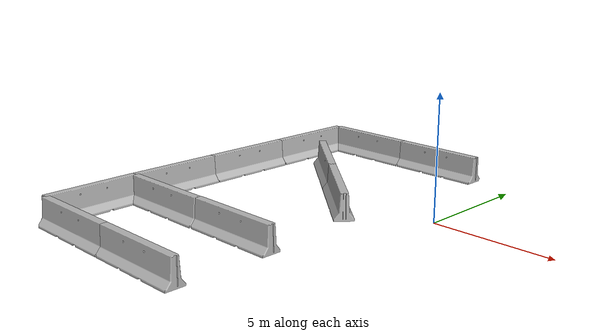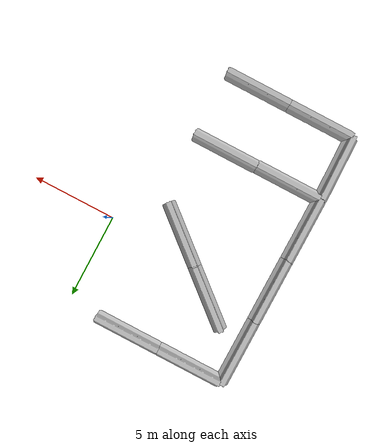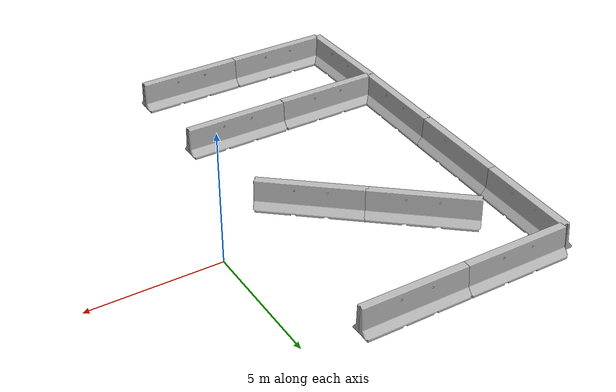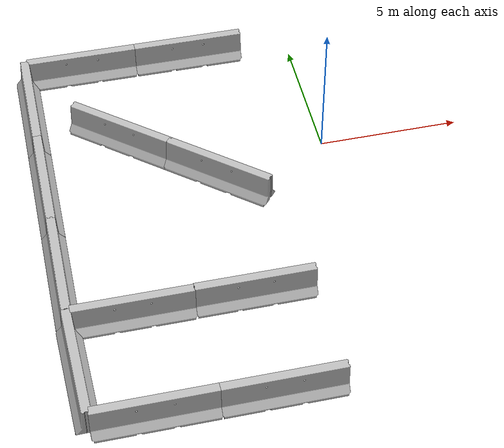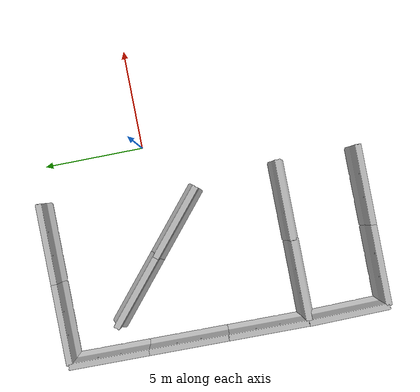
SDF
<sdf version="1.6">
 <world name="default">
  <model name="jersey_barrier">
   <static>1</static>
   <link name="link">
    <visual name="visual">
     <geometry>
      <mesh><uri>model://jersey_barrier/meshes/jersey_barrier.dae</uri><scale>1 1 1</scale></mesh>
     </geometry>
    </visual>
    <collision name="upright">
     <pose>0 0 0.5715 0 -0 0</pose>
     <geometry><box><size>4.06542 0.3063 1.143</size></box></geometry>
    </collision>
    <collision name="base">
     <pose>0 0 0.032258 0 -0 0</pose>
     <geometry><box><size>4.06542 0.8107 0.064516</size></box></geometry>
    </collision>
    <collision name="base2">
     <pose>0 0 0.1 0 -0 0</pose>
     <geometry><box><size>4.06542 0.65 0.1</size></box></geometry>
    </collision>
    <collision name="base3">
     <pose>0 0 0.2 0 -0 0</pose>
     <geometry><box><size>4.06542 0.5 0.1</size></box></geometry>
    </collision>
    <collision name="left-angle">
     <pose>0 -0.224 0.2401 0.9 -0 0</pose>
     <geometry><box><size>4.06542 0.5 0.064516</size></box></geometry>
    </collision>
    <collision name="right-angle">
     <pose>0 0.224 0.2401 -0.9 0 0</pose>
     <geometry><box><size>4.06542 0.5 0.064516</size></box></geometry>
    </collision>
    <velocity_decay><linear>0</linear><angular>0</angular></velocity_decay>
   </link>
   <pose>-4 -1 0 0 0 -0.7</pose>
  </model>
  <model name="jersey_barrier_1_clone_0">
   <static>1</static>
   <link name="link">
    <visual name="visual">
     <geometry>
      <mesh><uri>model://jersey_barrier/meshes/jersey_barrier.dae</uri><scale>1 1 1</scale></mesh>
     </geometry>
    </visual>
    <collision name="upright">
     <pose>0 0 0.5715 0 -0 0</pose>
     <geometry><box><size>4.06542 0.3063 1.143</size></box></geometry>
    </collision>
    <collision name="base">
     <pose>0 0 0.032258 0 -0 0</pose>
     <geometry><box><size>4.06542 0.8107 0.064516</size></box></geometry>
    </collision>
    <collision name="base2">
     <pose>0 0 0.1 0 -0 0</pose>
     <geometry><box><size>4.06542 0.65 0.1</size></box></geometry>
    </collision>
    <collision name="base3">
     <pose>0 0 0.2 0 -0 0</pose>
     <geometry><box><size>4.06542 0.5 0.1</size></box></geometry>
    </collision>
    <collision name="left-angle">
     <pose>0 -0.224 0.2401 0.9 -0 0</pose>
     <geometry><box><size>4.06542 0.5 0.064516</size></box></geometry>
    </collision>
    <collision name="right-angle">
     <pose>0 0.224 0.2401 -0.9 0 0</pose>
     <geometry><box><size>4.06542 0.5 0.064516</size></box></geometry>
    </collision>
   </link>
   <pose>-3.96775 -10.4974 0 0 -0 0</pose>
  </model>
  <model name="jersey_barrier_1_clone_1">
   <static>1</static>
   <link name="link">
    <visual name="visual">
     <geometry>
      <mesh><uri>model://jersey_barrier/meshes/jersey_barrier.dae</uri><scale>1 1 1</scale></mesh>
     </geometry>
    </visual>
    <collision name="upright">
     <pose>0 0 0.5715 0 -0 0</pose>
     <geometry><box><size>4.06542 0.3063 1.143</size></box></geometry>
    </collision>
    <collision name="base">
     <pose>0 0 0.032258 0 -0 0</pose>
     <geometry><box><size>4.06542 0.8107 0.064516</size></box></geometry>
    </collision>
    <collision name="base2">
     <pose>0 0 0.1 0 -0 0</pose>
     <geometry><box><size>4.06542 0.65 0.1</size></box></geometry>
    </collision>
    <collision name="base3">
     <pose>0 0 0.2 0 -0 0</pose>
     <geometry><box><size>4.06542 0.5 0.1</size></box></geometry>
    </collision>
    <collision name="left-angle">
     <pose>0 -0.224 0.2401 0.9 -0 0</pose>
     <geometry><box><size>4.06542 0.5 0.064516</size></box></geometry>
    </collision>
    <collision name="right-angle">
     <pose>0 0.224 0.2401 -0.9 0 0</pose>
     <geometry><box><size>4.06542 0.5 0.064516</size></box></geometry>
    </collision>
   </link>
   <pose>-7.97176 -10.4956 0 0 -0 0</pose>
  </model>
  <model name="jersey_barrier_1_clone_2">
   <static>1</static>
   <link name="link">
    <visual name="visual">
     <geometry>
      <mesh><uri>model://jersey_barrier/meshes/jersey_barrier.dae</uri><scale>1 1 1</scale></mesh>
     </geometry>
    </visual>
    <collision name="upright">
     <pose>0 0 0.5715 0 -0 0</pose>
     <geometry><box><size>4.06542 0.3063 1.143</size></box></geometry>
    </collision>
    <collision name="base">
     <pose>0 0 0.032258 0 -0 0</pose>
     <geometry><box><size>4.06542 0.8107 0.064516</size></box></geometry>
    </collision>
    <collision name="base2">
     <pose>0 0 0.1 0 -0 0</pose>
     <geometry><box><size>4.06542 0.65 0.1</size></box></geometry>
    </collision>
    <collision name="base3">
     <pose>0 0 0.2 0 -0 0</pose>
     <geometry><box><size>4.06542 0.5 0.1</size></box></geometry>
    </collision>
    <collision name="left-angle">
     <pose>0 -0.224 0.2401 0.9 -0 0</pose>
     <geometry><box><size>4.06542 0.5 0.064516</size></box></geometry>
    </collision>
    <collision name="right-angle">
     <pose>0 0.224 0.2401 -0.9 0 0</pose>
     <geometry><box><size>4.06542 0.5 0.064516</size></box></geometry>
    </collision>
   </link>
   <pose>-10.0738 -8.515 0 0 0 -1.55445</pose>
  </model>
  <model name="jersey_barrier_1_clone_2_clone">
   <static>1</static>
   <link name="link">
    <visual name="visual">
     <geometry>
      <mesh><uri>model://jersey_barrier/meshes/jersey_barrier.dae</uri><scale>1 1 1</scale></mesh>
     </geometry>
    </visual>
    <collision name="upright">
     <pose>0 0 0.5715 0 -0 0</pose>
     <geometry><box><size>4.06542 0.3063 1.143</size></box></geometry>
    </collision>
    <collision name="base">
     <pose>0 0 0.032258 0 -0 0</pose>
     <geometry><box><size>4.06542 0.8107 0.064516</size></box></geometry>
    </collision>
    <collision name="base2">
     <pose>0 0 0.1 0 -0 0</pose>
     <geometry><box><size>4.06542 0.65 0.1</size></box></geometry>
    </collision>
    <collision name="base3">
     <pose>0 0 0.2 0 -0 0</pose>
     <geometry><box><size>4.06542 0.5 0.1</size></box></geometry>
    </collision>
    <collision name="left-angle">
     <pose>0 -0.224 0.2401 0.9 -0 0</pose>
     <geometry><box><size>4.06542 0.5 0.064516</size></box></geometry>
    </collision>
    <collision name="right-angle">
     <pose>0 0.224 0.2401 -0.9 0 0</pose>
     <geometry><box><size>4.06542 0.5 0.064516</size></box></geometry>
    </collision>
   </link>
   <pose>-10.0721 -4.47903 0 0 0 -1.5814</pose>
  </model>
  <model name="jersey_barrier_1_clone_2_clone_0">
   <static>1</static>
   <link name="link">
    <visual name="visual">
     <geometry>
      <mesh><uri>model://jersey_barrier/meshes/jersey_barrier.dae</uri><scale>1 1 1</scale></mesh>
     </geometry>
    </visual>
    <collision name="upright">
     <pose>0 0 0.5715 0 -0 0</pose>
     <geometry><box><size>4.06542 0.3063 1.143</size></box></geometry>
    </collision>
    <collision name="base">
     <pose>0 0 0.032258 0 -0 0</pose>
     <geometry><box><size>4.06542 0.8107 0.064516</size></box></geometry>
    </collision>
    <collision name="base2">
     <pose>0 0 0.1 0 -0 0</pose>
     <geometry><box><size>4.06542 0.65 0.1</size></box></geometry>
    </collision>
    <collision name="base3">
     <pose>0 0 0.2 0 -0 0</pose>
     <geometry><box><size>4.06542 0.5 0.1</size></box></geometry>
    </collision>
    <collision name="left-angle">
     <pose>0 -0.224 0.2401 0.9 -0 0</pose>
     <geometry><box><size>4.06542 0.5 0.064516</size></box></geometry>
    </collision>
    <collision name="right-angle">
     <pose>0 0.224 0.2401 -0.9 0 0</pose>
     <geometry><box><size>4.06542 0.5 0.064516</size></box></geometry>
    </collision>
   </link>
   <pose>-10.0264 -0.525115 0 0 0 -1.5814</pose>
  </model>
  <model name="jersey_barrier_1_clone_2_clone_1">
   <static>1</static>
   <link name="link">
    <visual name="visual">
     <geometry>
      <mesh><uri>model://jersey_barrier/meshes/jersey_barrier.dae</uri><scale>1 1 1</scale></mesh>
     </geometry>
    </visual>
    <collision name="upright">
     <pose>0 0 0.5715 0 -0 0</pose>
     <geometry><box><size>4.06542 0.3063 1.143</size></box></geometry>
    </collision>
    <collision name="base">
     <pose>0 0 0.032258 0 -0 0</pose>
     <geometry><box><size>4.06542 0.8107 0.064516</size></box></geometry>
    </collision>
    <collision name="base2">
     <pose>0 0 0.1 0 -0 0</pose>
     <geometry><box><size>4.06542 0.65 0.1</size></box></geometry>
    </collision>
    <collision name="base3">
     <pose>0 0 0.2 0 -0 0</pose>
     <geometry><box><size>4.06542 0.5 0.1</size></box></geometry>
    </collision>
    <collision name="left-angle">
     <pose>0 -0.224 0.2401 0.9 -0 0</pose>
     <geometry><box><size>4.06542 0.5 0.064516</size></box></geometry>
    </collision>
    <collision name="right-angle">
     <pose>0 0.224 0.2401 -0.9 0 0</pose>
     <geometry><box><size>4.06542 0.5 0.064516</size></box></geometry>
    </collision>
   </link>
   <pose>-9.98287 3.46467 0 0 0 -1.5814</pose>
  </model>
  <model name="jersey_barrier_1_clone_1_clone">
   <static>1</static>
   <link name="link">
    <visual name="visual">
     <geometry>
      <mesh><uri>model://jersey_barrier/meshes/jersey_barrier.dae</uri><scale>1 1 1</scale></mesh>
     </geometry>
    </visual>
    <collision name="upright">
     <pose>0 0 0.5715 0 -0 0</pose>
     <geometry><box><size>4.06542 0.3063 1.143</size></box></geometry>
    </collision>
    <collision name="base">
     <pose>0 0 0.032258 0 -0 0</pose>
     <geometry><box><size>4.06542 0.8107 0.064516</size></box></geometry>
    </collision>
    <collision name="base2">
     <pose>0 0 0.1 0 -0 0</pose>
     <geometry><box><size>4.06542 0.65 0.1</size></box></geometry>
    </collision>
    <collision name="base3">
     <pose>0 0 0.2 0 -0 0</pose>
     <geometry><box><size>4.06542 0.5 0.1</size></box></geometry>
    </collision>
    <collision name="left-angle">
     <pose>0 -0.224 0.2401 0.9 -0 0</pose>
     <geometry><box><size>4.06542 0.5 0.064516</size></box></geometry>
    </collision>
    <collision name="right-angle">
     <pose>0 0.224 0.2401 -0.9 0 0</pose>
     <geometry><box><size>4.06542 0.5 0.064516</size></box></geometry>
    </collision>
   </link>
   <pose>-7.86051 5.42898 0 0 -0 0</pose>
  </model>
  <model name="jersey_barrier_1_clone_1_clone_clone_2_clone">
   <static>1</static>
   <link name="link">
    <visual name="visual">
     <geometry>
      <mesh><uri>model://jersey_barrier/meshes/jersey_barrier.dae</uri><scale>1 1 1</scale></mesh>
     </geometry>
    </visual>
    <collision name="upright">
     <pose>0 0 0.5715 0 -0 0</pose>
     <geometry><box><size>4.06542 0.3063 1.143</size></box></geometry>
    </collision>
    <collision name="base">
     <pose>0 0 0.032258 0 -0 0</pose>
     <geometry><box><size>4.06542 0.8107 0.064516</size></box></geometry>
    </collision>
    <collision name="base2">
     <pose>0 0 0.1 0 -0 0</pose>
     <geometry><box><size>4.06542 0.65 0.1</size></box></geometry>
    </collision>
    <collision name="base3">
     <pose>0 0 0.2 0 -0 0</pose>
     <geometry><box><size>4.06542 0.5 0.1</size></box></geometry>
    </collision>
    <collision name="left-angle">
     <pose>0 -0.224 0.2401 0.9 -0 0</pose>
     <geometry><box><size>4.06542 0.5 0.064516</size></box></geometry>
    </collision>
    <collision name="right-angle">
     <pose>0 0.224 0.2401 -0.9 0 0</pose>
     <geometry><box><size>4.06542 0.5 0.064516</size></box></geometry>
    </collision>
   </link>
   <pose>-7.9795 -6.51878 0 0 -0 0</pose>
  </model>
  <model name="jersey_barrier_1_clone_1_clone_clone_2_clone_0">
   <static>1</static>
   <link name="link">
    <visual name="visual">
     <geometry>
      <mesh><uri>model://jersey_barrier/meshes/jersey_barrier.dae</uri><scale>1 1 1</scale></mesh>
     </geometry>
    </visual>
    <collision name="upright">
     <pose>0 0 0.5715 0 -0 0</pose>
     <geometry><box><size>4.06542 0.3063 1.143</size></box></geometry>
    </collision>
    <collision name="base">
     <pose>0 0 0.032258 0 -0 0</pose>
     <geometry><box><size>4.06542 0.8107 0.064516</size></box></geometry>
    </collision>
    <collision name="base2">
     <pose>0 0 0.1 0 -0 0</pose>
     <geometry><box><size>4.06542 0.65 0.1</size></box></geometry>
    </collision>
    <collision name="base3">
     <pose>0 0 0.2 0 -0 0</pose>
     <geometry><box><size>4.06542 0.5 0.1</size></box></geometry>
    </collision>
    <collision name="left-angle">
     <pose>0 -0.224 0.2401 0.9 -0 0</pose>
     <geometry><box><size>4.06542 0.5 0.064516</size></box></geometry>
    </collision>
    <collision name="right-angle">
     <pose>0 0.224 0.2401 -0.9 0 0</pose>
     <geometry><box><size>4.06542 0.5 0.064516</size></box></geometry>
    </collision>
   </link>
   <pose>-3.9492 -6.49404 0 0 -0 0</pose>
  </model>
  <model name="jersey_barrier_clone">
   <static>1</static>
   <link name="link">
    <visual name="visual">
     <geometry>
      <mesh><uri>model://jersey_barrier/meshes/jersey_barrier.dae</uri><scale>1 1 1</scale></mesh>
     </geometry>
    </visual>
    <collision name="upright">
     <pose>0 0 0.5715 0 -0 0</pose>
     <geometry><box><size>4.06542 0.3063 1.143</size></box></geometry>
    </collision>
    <collision name="base">
     <pose>0 0 0.032258 0 -0 0</pose>
     <geometry><box><size>4.06542 0.8107 0.064516</size></box></geometry>
    </collision>
    <collision name="base2">
     <pose>0 0 0.1 0 -0 0</pose>
     <geometry><box><size>4.06542 0.65 0.1</size></box></geometry>
    </collision>
    <collision name="base3">
     <pose>0 0 0.2 0 -0 0</pose>
     <geometry><box><size>4.06542 0.5 0.1</size></box></geometry>
    </collision>
    <collision name="left-angle">
     <pose>0 -0.224 0.2401 0.9 -0 0</pose>
     <geometry><box><size>4.06542 0.5 0.064516</size></box></geometry>
    </collision>
    <collision name="right-angle">
     <pose>0 0.224 0.2401 -0.9 0 0</pose>
     <geometry><box><size>4.06542 0.5 0.064516</size></box></geometry>
    </collision>
    <velocity_decay><linear>0</linear><angular>0</angular></velocity_decay>
   </link>
   <pose>-6.99787 1.52647 0 0 0 -0.7</pose>
  </model>
  <model name="jersey_barrier_1_clone_1_clone_clone_2_clone_0_clone_1">
   <static>1</static>
   <link name="link">
    <visual name="visual">
     <geometry>
      <mesh><uri>model://jersey_barrier/meshes/jersey_barrier.dae</uri><scale>1 1 1</scale></mesh>
     </geometry>
    </visual>
    <collision name="upright">
     <pose>0 0 0.5715 0 -0 0</pose>
     <geometry><box><size>4.06542 0.3063 1.143</size></box></geometry>
    </collision>
    <collision name="base">
     <pose>0 0 0.032258 0 -0 0</pose>
     <geometry><box><size>4.06542 0.8107 0.064516</size></box></geometry>
    </collision>
    <collision name="base2">
     <pose>0 0 0.1 0 -0 0</pose>
     <geometry><box><size>4.06542 0.65 0.1</size></box></geometry>
    </collision>
    <collision name="base3">
     <pose>0 0 0.2 0 -0 0</pose>
     <geometry><box><size>4.06542 0.5 0.1</size></box></geometry>
    </collision>
    <collision name="left-angle">
     <pose>0 -0.224 0.2401 0.9 -0 0</pose>
     <geometry><box><size>4.06542 0.5 0.064516</size></box></geometry>
    </collision>
    <collision name="right-angle">
     <pose>0 0.224 0.2401 -0.9 0 0</pose>
     <geometry><box><size>4.06542 0.5 0.064516</size></box></geometry>
    </collision>
   </link>
   <pose>-3.85367 5.42903 0 0 -0 0</pose>
  </model>
 </world>
</sdf>
